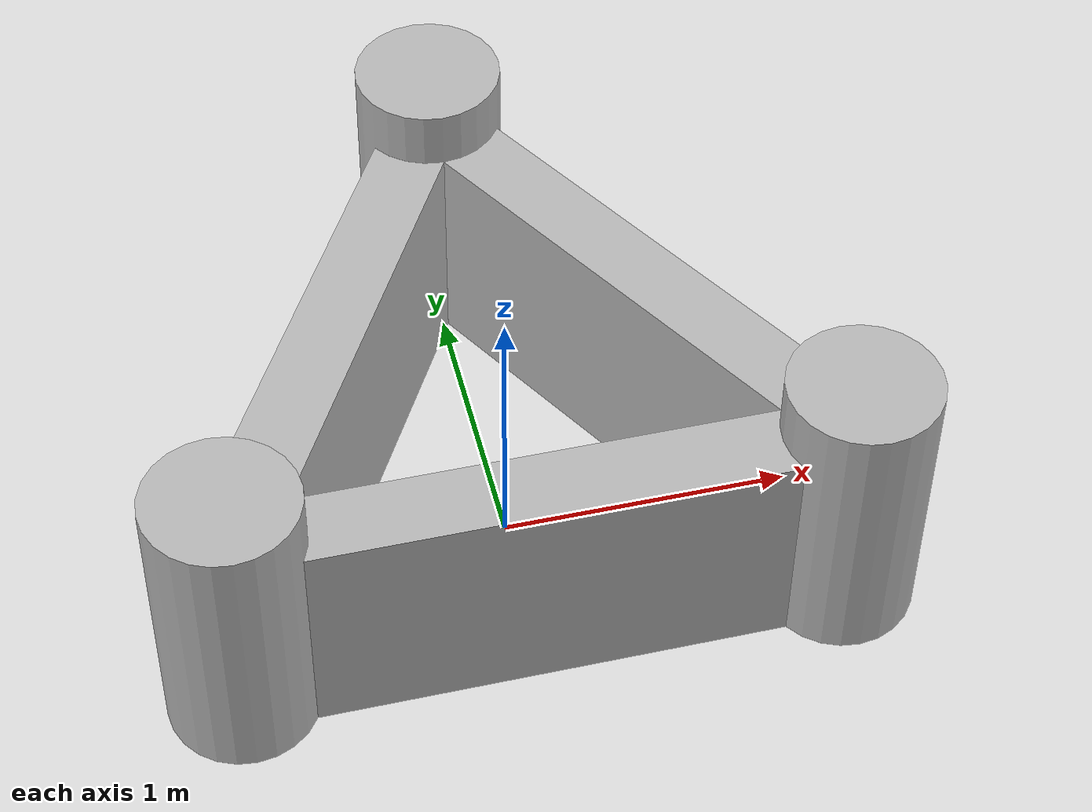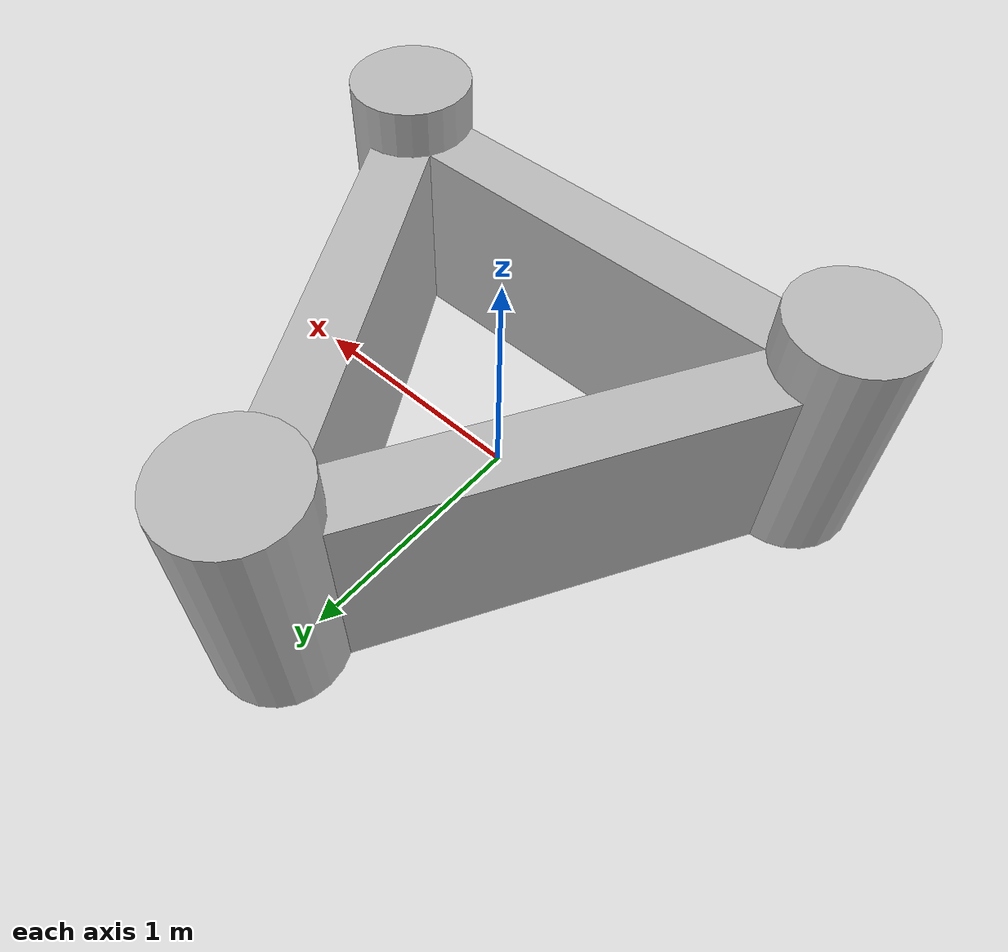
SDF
<?xml version="1.0" ?>
<sdf version="1.5">
    <model name="custom_model">
        <pose>0 0 0.5 0 0 0</pose>
        <static>false</static>
        <link name="link">
            <inertial>
                <mass>1.0</mass>
                <inertia>
                    <ixx>0.083</ixx>
                    <ixy>0.0</ixy>
                    <ixz>0.0</ixz>
                    <iyy>0.083</iyy>
                    <iyz>0.0</iyz>
                    <izz>0.083</izz>
                </inertia>
            </inertial>
            <collision name="collision1_cylinder">
                <pose>0 1.155 0.1 0 0 0</pose>
                <geometry>
                    <cylinder>
                        <radius>0.25</radius>
                        <length>1</length>
                    </cylinder>
                </geometry>
            </collision>
            <collision name="collision2_cylinder">
                <pose>-1 -0.577 0.1 0 0 0</pose>
                <geometry>
                    <cylinder>
                        <radius>0.25</radius>
                        <length>1</length>
                    </cylinder>
                </geometry>
            </collision>
            <collision name="collision3_cylinder">
                <pose>1 -0.577 0.1 0 0 0</pose>
                <geometry>
                    <cylinder>
                        <radius>0.25</radius>
                        <length>1</length>
                    </cylinder>
                </geometry>
            </collision>
            <collision name="collision1_box">
                <pose>0.4996 0.2885 0 0 0 2.0944</pose>
                <geometry>
                    <box>
                        <size>2 0.25 0.8</size>
                    </box>
                </geometry>
            </collision>
            <collision name="collision2_box">
                <pose>-0.4996 0.2885 0 0 0 4.189</pose>
                <geometry>
                    <box>
                        <size>2 0.25 0.8</size>
                    </box>
                </geometry>
            </collision>
            <collision name="collision3_box">
                <pose>0 -0.577 0 0 0 0</pose>
                <geometry>
                    <box>
                        <size>2 0.25 0.8</size>
                    </box>
                </geometry>
            </collision>
            <visual name="visual1_cylinder">
                <pose>0 1.155 0.1 0 0 0</pose>
                <geometry>
                    <cylinder>
                        <radius>0.25</radius>
                        <length>1</length>
                    </cylinder>
                </geometry>
            </visual>
            <visual name="visual2_cylinder">
                <pose>-1 -0.577 0.1 0 0 0</pose>
                <geometry>
                    <cylinder>
                        <radius>0.25</radius>
                        <length>1</length>
                    </cylinder>
                </geometry>
            </visual>
            <visual name="visual3_cylinder">
                <pose>1 -0.577 0.1 0 0 0</pose>
                <geometry>
                    <cylinder>
                        <radius>0.25</radius>
                        <length>1</length>
                    </cylinder>
                </geometry>
            </visual>
            <visual name="visual1_box">
                <pose>0.4996 0.2885 0 0 0 2.0944</pose>
                <geometry>
                    <box>
                        <size>2 0.25 0.8</size>
                    </box>
                </geometry>
            </visual>
            <visual name="visual2_box">
                <pose>-0.4996 0.2885 0 0 0 4.189</pose>
                <geometry>
                    <box>
                        <size>2 0.25 0.8</size>
                    </box>
                </geometry>
            </visual>
            <visual name="visual3_box">
                <pose>0 -0.577 0 0 0 0</pose>
                <geometry>
                    <box>
                        <size>2 0.25 0.8</size>
                    </box>
                </geometry>
            </visual>
        </link>
    </model>
</sdf>
